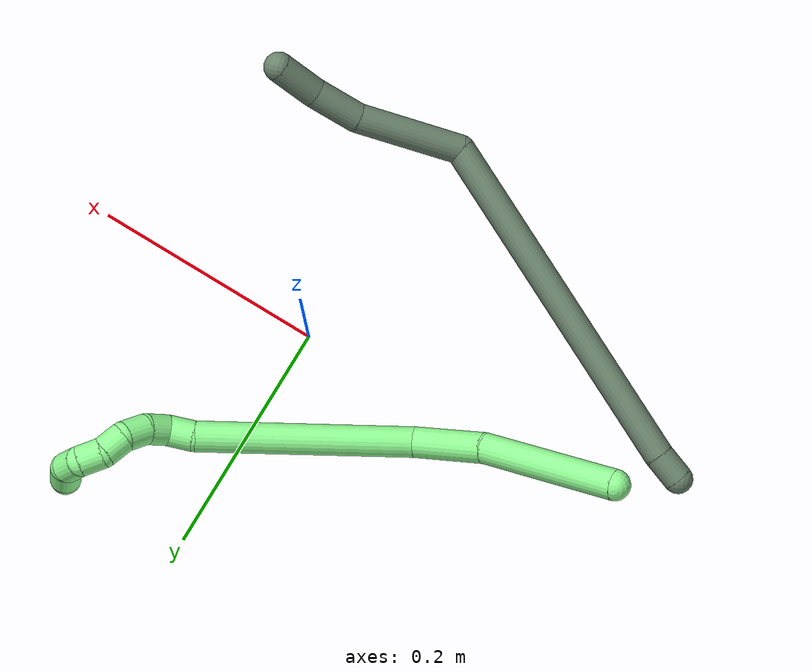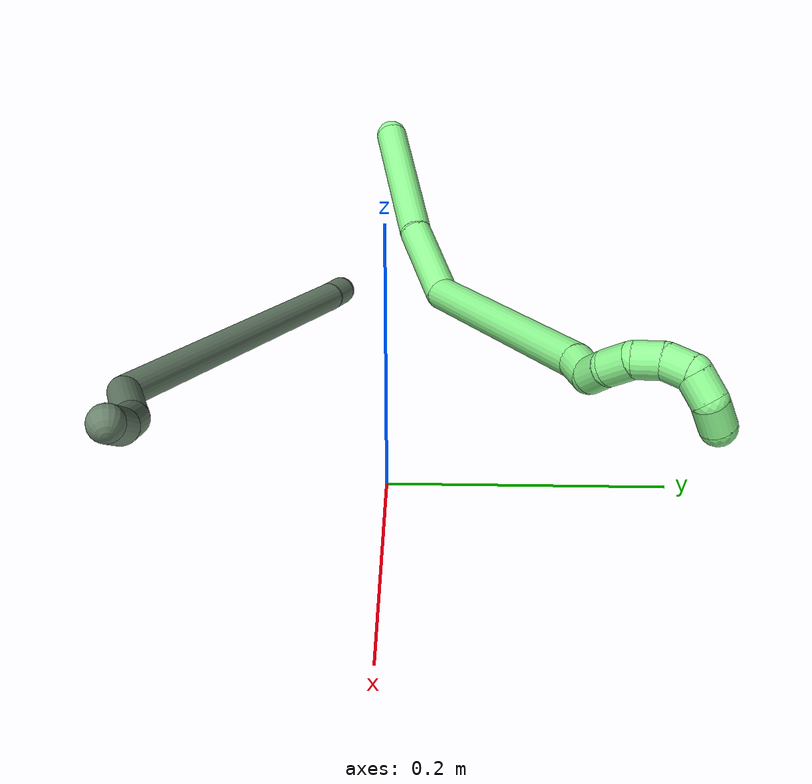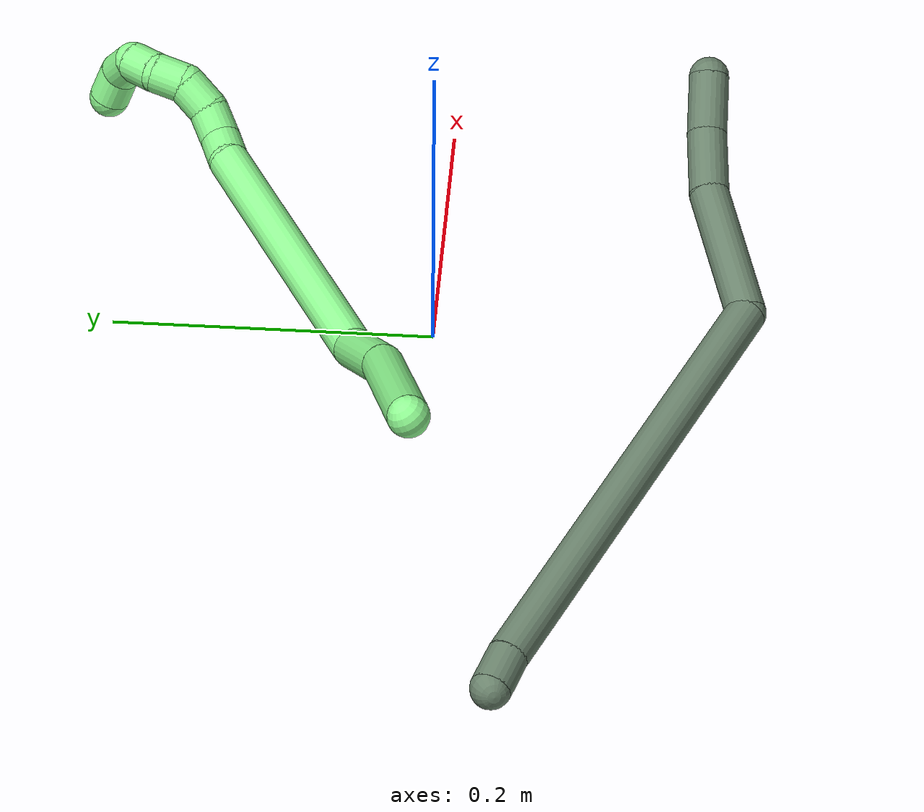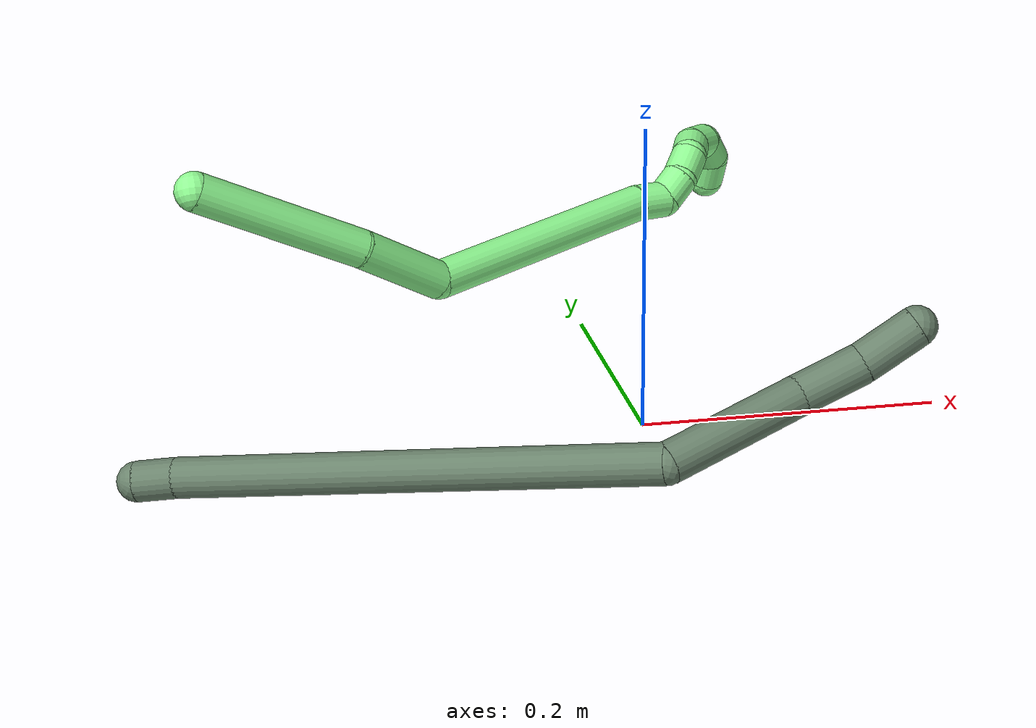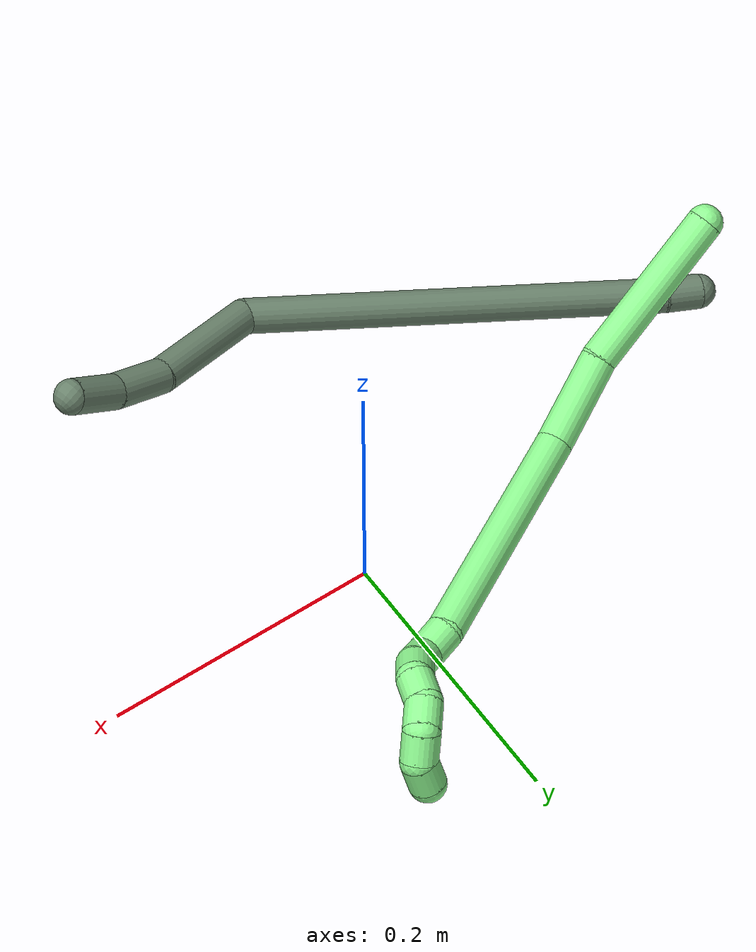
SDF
<sdf version="1.7">
 <world name="default">
  <model name="13">
   <static>0</static>
   <link name="13">
    <collision name="collision-cylinder-e_1_1_4">
     <pose>0.028968 0.04586 -0.019999 -1.98202 0.524834 -0.778503</pose>
     <geometry><cylinder><radius>0.0125</radius><length>0.115623</length></cylinder></geometry>
     <surface>
      <friction><ode><mu>1.16</mu><mu2>1.16</mu2><slip1>0</slip1><slip2>0</slip2></ode></friction>
      <contact><ode><kp>1e+06</kp><kd>1</kd><max_vel>0</max_vel><min_depth>0.001</min_depth></ode></contact>
     </surface>
    </collision>
    <visual name="visual-cylinder-e_1_1_4">
     <pose>0.028968 0.04586 -0.019999 -1.98202 0.524834 -0.778503</pose>
     <geometry><cylinder><radius>0.0125</radius><length>0.115623</length></cylinder></geometry>
     <material><ambient>0.564706 0.984314 0.572549 1</ambient></material>
    </visual>
    <collision name="collision-cylinder-e_2_4_5">
     <pose>0.069068 0.119811 -0.050473 -1.92773 0.355541 -0.506398</pose>
     <geometry><cylinder><radius>0.0125</radius><length>0.063962</length></cylinder></geometry>
     <surface>
      <friction><ode><mu>1.16</mu><mu2>1.16</mu2><slip1>0</slip1><slip2>0</slip2></ode></friction>
      <contact><ode><kp>1e+06</kp><kd>1</kd><max_vel>0</max_vel><min_depth>0.001</min_depth></ode></contact>
     </surface>
    </collision>
    <visual name="visual-cylinder-e_2_4_5">
     <pose>0.069068 0.119811 -0.050473 -1.92773 0.355541 -0.506398</pose>
     <geometry><cylinder><radius>0.0125</radius><length>0.063962</length></cylinder></geometry>
     <material><ambient>0.564706 0.984314 0.572549 1</ambient></material>
    </visual>
    <collision name="collision-cylinder-e_3_5_6">
     <pose>0.124269 0.220802 -0.037605 -1.2609 0.52237 -0.3853</pose>
     <geometry><cylinder><radius>0.0125</radius><length>0.17665</length></cylinder></geometry>
     <surface>
      <friction><ode><mu>1.16</mu><mu2>1.16</mu2><slip1>0</slip1><slip2>0</slip2></ode></friction>
      <contact><ode><kp>1e+06</kp><kd>1</kd><max_vel>0</max_vel><min_depth>0.001</min_depth></ode></contact>
     </surface>
    </collision>
    <visual name="visual-cylinder-e_3_5_6">
     <pose>0.124269 0.220802 -0.037605 -1.2609 0.52237 -0.3853</pose>
     <geometry><cylinder><radius>0.0125</radius><length>0.17665</length></cylinder></geometry>
     <material><ambient>0.564706 0.984314 0.572549 1</ambient></material>
    </visual>
    <collision name="collision-cylinder-e_4_6_7">
     <pose>0.175272 0.302278 -0.013469 -1.47862 0.677884 -0.622057</pose>
     <geometry><cylinder><radius>0.0125</radius><length>0.022115</length></cylinder></geometry>
     <surface>
      <friction><ode><mu>1.16</mu><mu2>1.16</mu2><slip1>0</slip1><slip2>0</slip2></ode></friction>
      <contact><ode><kp>1e+06</kp><kd>1</kd><max_vel>0</max_vel><min_depth>0.001</min_depth></ode></contact>
     </surface>
    </collision>
    <visual name="visual-cylinder-e_4_6_7">
     <pose>0.175272 0.302278 -0.013469 -1.47862 0.677884 -0.622057</pose>
     <geometry><cylinder><radius>0.0125</radius><length>0.022115</length></cylinder></geometry>
     <material><ambient>0.564706 0.984314 0.572549 1</ambient></material>
    </visual>
    <collision name="collision-cylinder-e_5_7_8">
     <pose>0.187659 0.315804 -0.005592 -0.609974 0.562777 -0.181496</pose>
     <geometry><cylinder><radius>0.0125</radius><length>0.020435</length></cylinder></geometry>
     <surface>
      <friction><ode><mu>1.16</mu><mu2>1.16</mu2><slip1>0</slip1><slip2>0</slip2></ode></friction>
      <contact><ode><kp>1e+06</kp><kd>1</kd><max_vel>0</max_vel><min_depth>0.001</min_depth></ode></contact>
     </surface>
    </collision>
    <visual name="visual-cylinder-e_5_7_8">
     <pose>0.187659 0.315804 -0.005592 -0.609974 0.562777 -0.181496</pose>
     <geometry><cylinder><radius>0.0125</radius><length>0.020435</length></cylinder></geometry>
     <material><ambient>0.564706 0.984314 0.572549 1</ambient></material>
    </visual>
    <collision name="collision-cylinder-e_6_8_9">
     <pose>0.195527 0.327147 0.009543 -0.670976 0.230899 -0.080823</pose>
     <geometry><cylinder><radius>0.0125</radius><length>0.021123</length></cylinder></geometry>
     <surface>
      <friction><ode><mu>1.16</mu><mu2>1.16</mu2><slip1>0</slip1><slip2>0</slip2></ode></friction>
      <contact><ode><kp>1e+06</kp><kd>1</kd><max_vel>0</max_vel><min_depth>0.001</min_depth></ode></contact>
     </surface>
    </collision>
    <visual name="visual-cylinder-e_6_8_9">
     <pose>0.195527 0.327147 0.009543 -0.670976 0.230899 -0.080823</pose>
     <geometry><cylinder><radius>0.0125</radius><length>0.021123</length></cylinder></geometry>
     <material><ambient>0.564706 0.984314 0.572549 1</ambient></material>
    </visual>
    <collision name="collision-cylinder-e_7_9_10">
     <pose>0.196505 0.341939 0.022912 -1.00649 -0.14379 0.079255</pose>
     <geometry><cylinder><radius>0.0125</radius><length>0.020088</length></cylinder></geometry>
     <surface>
      <friction><ode><mu>1.16</mu><mu2>1.16</mu2><slip1>0</slip1><slip2>0</slip2></ode></friction>
      <contact><ode><kp>1e+06</kp><kd>1</kd><max_vel>0</max_vel><min_depth>0.001</min_depth></ode></contact>
     </surface>
    </collision>
    <visual name="visual-cylinder-e_7_9_10">
     <pose>0.196505 0.341939 0.022912 -1.00649 -0.14379 0.079255</pose>
     <geometry><cylinder><radius>0.0125</radius><length>0.020088</length></cylinder></geometry>
     <material><ambient>0.564706 0.984314 0.572549 1</ambient></material>
    </visual>
    <collision name="collision-cylinder-e_8_10_11">
     <pose>0.19626 0.359993 0.030546 -1.33517 0.119731 -0.09443</pose>
     <geometry><cylinder><radius>0.0125</radius><length>0.020001</length></cylinder></geometry>
     <surface>
      <friction><ode><mu>1.16</mu><mu2>1.16</mu2><slip1>0</slip1><slip2>0</slip2></ode></friction>
      <contact><ode><kp>1e+06</kp><kd>1</kd><max_vel>0</max_vel><min_depth>0.001</min_depth></ode></contact>
     </surface>
    </collision>
    <visual name="visual-cylinder-e_8_10_11">
     <pose>0.19626 0.359993 0.030546 -1.33517 0.119731 -0.09443</pose>
     <geometry><cylinder><radius>0.0125</radius><length>0.020001</length></cylinder></geometry>
     <material><ambient>0.564706 0.984314 0.572549 1</ambient></material>
    </visual>
    <collision name="collision-cylinder-e_9_11_12">
     <pose>0.19643 0.378432 0.028197 -2.05918 -0.102661 0.170532</pose>
     <geometry><cylinder><radius>0.0125</radius><length>0.020001</length></cylinder></geometry>
     <surface>
      <friction><ode><mu>1.16</mu><mu2>1.16</mu2><slip1>0</slip1><slip2>0</slip2></ode></friction>
      <contact><ode><kp>1e+06</kp><kd>1</kd><max_vel>0</max_vel><min_depth>0.001</min_depth></ode></contact>
     </surface>
    </collision>
    <visual name="visual-cylinder-e_9_11_12">
     <pose>0.19643 0.378432 0.028197 -2.05918 -0.102661 0.170532</pose>
     <geometry><cylinder><radius>0.0125</radius><length>0.020001</length></cylinder></geometry>
     <material><ambient>0.564706 0.984314 0.572549 1</ambient></material>
    </visual>
    <collision name="collision-cylinder-e_10_12_2">
     <pose>0.190085 0.392719 0.017092 -2.43432 -0.560852 1.3251</pose>
     <geometry><cylinder><radius>0.0125</radius><length>0.020001</length></cylinder></geometry>
     <surface>
      <friction><ode><mu>1.16</mu><mu2>1.16</mu2><slip1>0</slip1><slip2>0</slip2></ode></friction>
      <contact><ode><kp>1e+06</kp><kd>1</kd><max_vel>0</max_vel><min_depth>0.001</min_depth></ode></contact>
     </surface>
    </collision>
    <visual name="visual-cylinder-e_10_12_2">
     <pose>0.190085 0.392719 0.017092 -2.43432 -0.560852 1.3251</pose>
     <geometry><cylinder><radius>0.0125</radius><length>0.020001</length></cylinder></geometry>
     <material><ambient>0.564706 0.984314 0.572549 1</ambient></material>
    </visual>
    <collision name="collision-sphere-2">
     <pose>0.184766 0.398222 0.010655 0 -0 0</pose>
     <geometry><sphere><radius>0.0125</radius></sphere></geometry>
     <surface>
      <friction><ode><mu>1.16</mu><mu2>1.16</mu2><slip1>0</slip1><slip2>0</slip2></ode></friction>
      <contact><ode><kp>1e+06</kp><kd>1</kd><max_vel>0</max_vel><min_depth>0.001</min_depth></ode></contact>
     </surface>
    </collision>
    <visual name="visual-sphere-2">
     <pose>0.184766 0.398222 0.010655 0 -0 0</pose>
     <geometry><sphere><radius>0.0125</radius></sphere></geometry>
     <material><ambient>0.564706 0.984314 0.572549 1</ambient></material>
    </visual>
    <collision name="collision-sphere-12">
     <pose>0.195405 0.387217 0.023529 0 -0 0</pose>
     <geometry><sphere><radius>0.0125</radius></sphere></geometry>
     <surface>
      <friction><ode><mu>1.16</mu><mu2>1.16</mu2><slip1>0</slip1><slip2>0</slip2></ode></friction>
      <contact><ode><kp>1e+06</kp><kd>1</kd><max_vel>0</max_vel><min_depth>0.001</min_depth></ode></contact>
     </surface>
    </collision>
    <visual name="visual-sphere-12">
     <pose>0.195405 0.387217 0.023529 0 -0 0</pose>
     <geometry><sphere><radius>0.0125</radius></sphere></geometry>
     <material><ambient>0.564706 0.984314 0.572549 1</ambient></material>
    </visual>
    <collision name="collision-sphere-11">
     <pose>0.197454 0.369647 0.032864 0 -0 0</pose>
     <geometry><sphere><radius>0.0125</radius></sphere></geometry>
     <surface>
      <friction><ode><mu>1.16</mu><mu2>1.16</mu2><slip1>0</slip1><slip2>0</slip2></ode></friction>
      <contact><ode><kp>1e+06</kp><kd>1</kd><max_vel>0</max_vel><min_depth>0.001</min_depth></ode></contact>
     </surface>
    </collision>
    <visual name="visual-sphere-11">
     <pose>0.197454 0.369647 0.032864 0 -0 0</pose>
     <geometry><sphere><radius>0.0125</radius></sphere></geometry>
     <material><ambient>0.564706 0.984314 0.572549 1</ambient></material>
    </visual>
    <collision name="collision-sphere-10">
     <pose>0.195065 0.350338 0.028228 0 -0 0</pose>
     <geometry><sphere><radius>0.0125</radius></sphere></geometry>
     <surface>
      <friction><ode><mu>1.16</mu><mu2>1.16</mu2><slip1>0</slip1><slip2>0</slip2></ode></friction>
      <contact><ode><kp>1e+06</kp><kd>1</kd><max_vel>0</max_vel><min_depth>0.001</min_depth></ode></contact>
     </surface>
    </collision>
    <visual name="visual-sphere-10">
     <pose>0.195065 0.350338 0.028228 0 -0 0</pose>
     <geometry><sphere><radius>0.0125</radius></sphere></geometry>
     <material><ambient>0.564706 0.984314 0.572549 1</ambient></material>
    </visual>
    <collision name="collision-sphere-9">
     <pose>0.197944 0.333539 0.017595 0 -0 0</pose>
     <geometry><sphere><radius>0.0125</radius></sphere></geometry>
     <surface>
      <friction><ode><mu>1.16</mu><mu2>1.16</mu2><slip1>0</slip1><slip2>0</slip2></ode></friction>
      <contact><ode><kp>1e+06</kp><kd>1</kd><max_vel>0</max_vel><min_depth>0.001</min_depth></ode></contact>
     </surface>
    </collision>
    <visual name="visual-sphere-9">
     <pose>0.197944 0.333539 0.017595 0 -0 0</pose>
     <geometry><sphere><radius>0.0125</radius></sphere></geometry>
     <material><ambient>0.564706 0.984314 0.572549 1</ambient></material>
    </visual>
    <collision name="collision-sphere-4">
     <pose>0.057935 0.091719 -0.039998 0 -0 0</pose>
     <geometry><sphere><radius>0.0125</radius></sphere></geometry>
     <surface>
      <friction><ode><mu>1.16</mu><mu2>1.16</mu2><slip1>0</slip1><slip2>0</slip2></ode></friction>
      <contact><ode><kp>1e+06</kp><kd>1</kd><max_vel>0</max_vel><min_depth>0.001</min_depth></ode></contact>
     </surface>
    </collision>
    <visual name="visual-sphere-4">
     <pose>0.057935 0.091719 -0.039998 0 -0 0</pose>
     <geometry><sphere><radius>0.0125</radius></sphere></geometry>
     <material><ambient>0.564706 0.984314 0.572549 1</ambient></material>
    </visual>
    <collision name="collision-sphere-1">
     <geometry><sphere><radius>0.0125</radius></sphere></geometry>
     <surface>
      <friction><ode><mu>1.16</mu><mu2>1.16</mu2><slip1>0</slip1><slip2>0</slip2></ode></friction>
      <contact><ode><kp>1e+06</kp><kd>1</kd><max_vel>0</max_vel><min_depth>0.001</min_depth></ode></contact>
     </surface>
    </collision>
    <visual name="visual-sphere-1">
     <geometry><sphere><radius>0.0125</radius></sphere></geometry>
     <material><ambient>0.564706 0.984314 0.572549 1</ambient></material>
    </visual>
    <collision name="collision-sphere-8">
     <pose>0.19311 0.320755 0.001491 0 -0 0</pose>
     <geometry><sphere><radius>0.0125</radius></sphere></geometry>
     <surface>
      <friction><ode><mu>1.16</mu><mu2>1.16</mu2><slip1>0</slip1><slip2>0</slip2></ode></friction>
      <contact><ode><kp>1e+06</kp><kd>1</kd><max_vel>0</max_vel><min_depth>0.001</min_depth></ode></contact>
     </surface>
    </collision>
    <visual name="visual-sphere-8">
     <pose>0.19311 0.320755 0.001491 0 -0 0</pose>
     <geometry><sphere><radius>0.0125</radius></sphere></geometry>
     <material><ambient>0.564706 0.984314 0.572549 1</ambient></material>
    </visual>
    <collision name="collision-sphere-5">
     <pose>0.0802 0.147902 -0.060949 0 -0 0</pose>
     <geometry><sphere><radius>0.0125</radius></sphere></geometry>
     <surface>
      <friction><ode><mu>1.16</mu><mu2>1.16</mu2><slip1>0</slip1><slip2>0</slip2></ode></friction>
      <contact><ode><kp>1e+06</kp><kd>1</kd><max_vel>0</max_vel><min_depth>0.001</min_depth></ode></contact>
     </surface>
    </collision>
    <visual name="visual-sphere-5">
     <pose>0.0802 0.147902 -0.060949 0 -0 0</pose>
     <geometry><sphere><radius>0.0125</radius></sphere></geometry>
     <material><ambient>0.564706 0.984314 0.572549 1</ambient></material>
    </visual>
    <collision name="collision-sphere-6">
     <pose>0.168337 0.293701 -0.014261 0 -0 0</pose>
     <geometry><sphere><radius>0.0125</radius></sphere></geometry>
     <surface>
      <friction><ode><mu>1.16</mu><mu2>1.16</mu2><slip1>0</slip1><slip2>0</slip2></ode></friction>
      <contact><ode><kp>1e+06</kp><kd>1</kd><max_vel>0</max_vel><min_depth>0.001</min_depth></ode></contact>
     </surface>
    </collision>
    <visual name="visual-sphere-6">
     <pose>0.168337 0.293701 -0.014261 0 -0 0</pose>
     <geometry><sphere><radius>0.0125</radius></sphere></geometry>
     <material><ambient>0.564706 0.984314 0.572549 1</ambient></material>
    </visual>
    <collision name="collision-sphere-7">
     <pose>0.182207 0.310854 -0.012676 0 -0 0</pose>
     <geometry><sphere><radius>0.0125</radius></sphere></geometry>
     <surface>
      <friction><ode><mu>1.16</mu><mu2>1.16</mu2><slip1>0</slip1><slip2>0</slip2></ode></friction>
      <contact><ode><kp>1e+06</kp><kd>1</kd><max_vel>0</max_vel><min_depth>0.001</min_depth></ode></contact>
     </surface>
    </collision>
    <visual name="visual-sphere-7">
     <pose>0.182207 0.310854 -0.012676 0 -0 0</pose>
     <geometry><sphere><radius>0.0125</radius></sphere></geometry>
     <material><ambient>0.564706 0.984314 0.572549 1</ambient></material>
    </visual>
    <inertial>
     <pose>0.114328 0.203024 -0.020834 0 -0 0</pose>
     <mass>0.5</mass>
     <inertia><ixx>0.000256</ixx><ixy>0</ixy><ixz>0</ixz><iyy>8e-06</iyy><iyz>0</iyz><izz>-0.000828</izz></inertia>
    </inertial>
   </link>
   <pose>-0.28069 -0.00506 0.177103 -0.380503 -0.315461 -0.523088</pose>
  </model>
  <model name="17">
   <static>0</static>
   <link name="17">
    <collision name="collision-cylinder-e_1_1_4">
     <pose>0.007285 -0.004316 -0.009681 2.72221 0.602101 1.93982</pose>
     <geometry><cylinder><radius>0.0125</radius><length>0.025723</length></cylinder></geometry>
     <surface>
      <friction><ode><mu>1.16</mu><mu2>1.16</mu2><slip1>0</slip1><slip2>0</slip2></ode></friction>
      <contact><ode><kp>1e+06</kp><kd>1</kd><max_vel>0</max_vel><min_depth>0.001</min_depth></ode></contact>
     </surface>
    </collision>
    <visual name="visual-cylinder-e_1_1_4">
     <pose>0.007285 -0.004316 -0.009681 2.72221 0.602101 1.93982</pose>
     <geometry><cylinder><radius>0.0125</radius><length>0.025723</length></cylinder></geometry>
     <material><ambient>0.415686 0.509804 0.423529 1</ambient></material>
    </visual>
    <collision name="collision-cylinder-e_2_4_5">
     <pose>0.100507 -0.074039 -0.125263 2.58832 0.604272 1.66394</pose>
     <geometry><cylinder><radius>0.0125</radius><length>0.302512</length></cylinder></geometry>
     <surface>
      <friction><ode><mu>1.16</mu><mu2>1.16</mu2><slip1>0</slip1><slip2>0</slip2></ode></friction>
      <contact><ode><kp>1e+06</kp><kd>1</kd><max_vel>0</max_vel><min_depth>0.001</min_depth></ode></contact>
     </surface>
    </collision>
    <visual name="visual-cylinder-e_2_4_5">
     <pose>0.100507 -0.074039 -0.125263 2.58832 0.604272 1.66394</pose>
     <geometry><cylinder><radius>0.0125</radius><length>0.302512</length></cylinder></geometry>
     <material><ambient>0.415686 0.509804 0.423529 1</ambient></material>
    </visual>
    <collision name="collision-cylinder-e_3_5_6">
     <pose>0.207337 -0.127268 -0.269779 -2.83609 0.476345 -2.01135</pose>
     <geometry><cylinder><radius>0.0125</radius><length>0.091123</length></cylinder></geometry>
     <surface>
      <friction><ode><mu>1.16</mu><mu2>1.16</mu2><slip1>0</slip1><slip2>0</slip2></ode></friction>
      <contact><ode><kp>1e+06</kp><kd>1</kd><max_vel>0</max_vel><min_depth>0.001</min_depth></ode></contact>
     </surface>
    </collision>
    <visual name="visual-cylinder-e_3_5_6">
     <pose>0.207337 -0.127268 -0.269779 -2.83609 0.476345 -2.01135</pose>
     <geometry><cylinder><radius>0.0125</radius><length>0.091123</length></cylinder></geometry>
     <material><ambient>0.415686 0.509804 0.423529 1</ambient></material>
    </visual>
    <collision name="collision-cylinder-e_4_6_7">
     <pose>0.241369 -0.112616 -0.324716 -2.99116 0.672294 -2.71674</pose>
     <geometry><cylinder><radius>0.0125</radius><length>0.0422</length></cylinder></geometry>
     <surface>
      <friction><ode><mu>1.16</mu><mu2>1.16</mu2><slip1>0</slip1><slip2>0</slip2></ode></friction>
      <contact><ode><kp>1e+06</kp><kd>1</kd><max_vel>0</max_vel><min_depth>0.001</min_depth></ode></contact>
     </surface>
    </collision>
    <visual name="visual-cylinder-e_4_6_7">
     <pose>0.241369 -0.112616 -0.324716 -2.99116 0.672294 -2.71674</pose>
     <geometry><cylinder><radius>0.0125</radius><length>0.0422</length></cylinder></geometry>
     <material><ambient>0.415686 0.509804 0.423529 1</ambient></material>
    </visual>
    <collision name="collision-cylinder-e_5_7_2">
     <pose>0.269007 -0.107685 -0.353417 -2.94568 0.854484 -2.71644</pose>
     <geometry><cylinder><radius>0.0125</radius><length>0.038442</length></cylinder></geometry>
     <surface>
      <friction><ode><mu>1.16</mu><mu2>1.16</mu2><slip1>0</slip1><slip2>0</slip2></ode></friction>
      <contact><ode><kp>1e+06</kp><kd>1</kd><max_vel>0</max_vel><min_depth>0.001</min_depth></ode></contact>
     </surface>
    </collision>
    <visual name="visual-cylinder-e_5_7_2">
     <pose>0.269007 -0.107685 -0.353417 -2.94568 0.854484 -2.71644</pose>
     <geometry><cylinder><radius>0.0125</radius><length>0.038442</length></cylinder></geometry>
     <material><ambient>0.415686 0.509804 0.423529 1</ambient></material>
    </visual>
    <collision name="collision-sphere-2">
     <pose>0.283503 -0.105229 -0.365796 0 -0 0</pose>
     <geometry><sphere><radius>0.0125</radius></sphere></geometry>
     <surface>
      <friction><ode><mu>1.16</mu><mu2>1.16</mu2><slip1>0</slip1><slip2>0</slip2></ode></friction>
      <contact><ode><kp>1e+06</kp><kd>1</kd><max_vel>0</max_vel><min_depth>0.001</min_depth></ode></contact>
     </surface>
    </collision>
    <visual name="visual-sphere-2">
     <pose>0.283503 -0.105229 -0.365796 0 -0 0</pose>
     <geometry><sphere><radius>0.0125</radius></sphere></geometry>
     <material><ambient>0.415686 0.509804 0.423529 1</ambient></material>
    </visual>
    <collision name="collision-sphere-7">
     <pose>0.25451 -0.110142 -0.341038 0 -0 0</pose>
     <geometry><sphere><radius>0.0125</radius></sphere></geometry>
     <surface>
      <friction><ode><mu>1.16</mu><mu2>1.16</mu2><slip1>0</slip1><slip2>0</slip2></ode></friction>
      <contact><ode><kp>1e+06</kp><kd>1</kd><max_vel>0</max_vel><min_depth>0.001</min_depth></ode></contact>
     </surface>
    </collision>
    <visual name="visual-sphere-7">
     <pose>0.25451 -0.110142 -0.341038 0 -0 0</pose>
     <geometry><sphere><radius>0.0125</radius></sphere></geometry>
     <material><ambient>0.415686 0.509804 0.423529 1</ambient></material>
    </visual>
    <collision name="collision-sphere-6">
     <pose>0.228228 -0.11509 -0.308393 0 -0 0</pose>
     <geometry><sphere><radius>0.0125</radius></sphere></geometry>
     <surface>
      <friction><ode><mu>1.16</mu><mu2>1.16</mu2><slip1>0</slip1><slip2>0</slip2></ode></friction>
      <contact><ode><kp>1e+06</kp><kd>1</kd><max_vel>0</max_vel><min_depth>0.001</min_depth></ode></contact>
     </surface>
    </collision>
    <visual name="visual-sphere-6">
     <pose>0.228228 -0.11509 -0.308393 0 -0 0</pose>
     <geometry><sphere><radius>0.0125</radius></sphere></geometry>
     <material><ambient>0.415686 0.509804 0.423529 1</ambient></material>
    </visual>
    <collision name="collision-sphere-5">
     <pose>0.186445 -0.139446 -0.231164 0 -0 0</pose>
     <geometry><sphere><radius>0.0125</radius></sphere></geometry>
     <surface>
      <friction><ode><mu>1.16</mu><mu2>1.16</mu2><slip1>0</slip1><slip2>0</slip2></ode></friction>
      <contact><ode><kp>1e+06</kp><kd>1</kd><max_vel>0</max_vel><min_depth>0.001</min_depth></ode></contact>
     </surface>
    </collision>
    <visual name="visual-sphere-5">
     <pose>0.186445 -0.139446 -0.231164 0 -0 0</pose>
     <geometry><sphere><radius>0.0125</radius></sphere></geometry>
     <material><ambient>0.415686 0.509804 0.423529 1</ambient></material>
    </visual>
    <collision name="collision-sphere-1">
     <geometry><sphere><radius>0.0125</radius></sphere></geometry>
     <surface>
      <friction><ode><mu>1.16</mu><mu2>1.16</mu2><slip1>0</slip1><slip2>0</slip2></ode></friction>
      <contact><ode><kp>1e+06</kp><kd>1</kd><max_vel>0</max_vel><min_depth>0.001</min_depth></ode></contact>
     </surface>
    </collision>
    <visual name="visual-sphere-1">
     <geometry><sphere><radius>0.0125</radius></sphere></geometry>
     <material><ambient>0.415686 0.509804 0.423529 1</ambient></material>
    </visual>
    <collision name="collision-sphere-4">
     <pose>0.014569 -0.008633 -0.019363 0 -0 0</pose>
     <geometry><sphere><radius>0.0125</radius></sphere></geometry>
     <surface>
      <friction><ode><mu>1.16</mu><mu2>1.16</mu2><slip1>0</slip1><slip2>0</slip2></ode></friction>
      <contact><ode><kp>1e+06</kp><kd>1</kd><max_vel>0</max_vel><min_depth>0.001</min_depth></ode></contact>
     </surface>
    </collision>
    <visual name="visual-sphere-4">
     <pose>0.014569 -0.008633 -0.019363 0 -0 0</pose>
     <geometry><sphere><radius>0.0125</radius></sphere></geometry>
     <material><ambient>0.415686 0.509804 0.423529 1</ambient></material>
    </visual>
    <inertial>
     <pose>0.140024 -0.085996 -0.180029 0 -0 0</pose>
     <mass>0.5</mass>
     <inertia>
      <ixx>0.001653</ixx>
      <ixy>0</ixy>
      <ixz>0</ixz>
      <iyy>0.002759</iyy>
      <iyz>0</iyz>
      <izz>-0.000404</izz>
     </inertia>
    </inertial>
   </link>
   <pose>-0.325967 -0.055897 0.012452 0.949139 -1.06959 -0.769264</pose>
  </model>
 </world>
</sdf>
